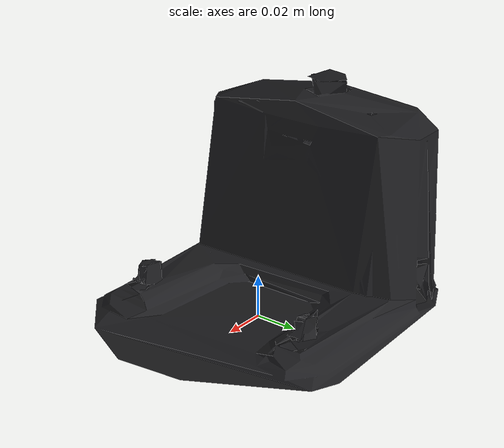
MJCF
<mujoco model="create3_dock">
  <compiler meshdir="meshes"/>

  <asset>
    <material name="dock_dark" rgba="0.12 0.12 0.13 1"/>
    <mesh name="dock_visual" file="dock_visual.obj"/>
  </asset>

  <worldbody>
    <body name="std_dock_link">
      <geom name="dock_visual" type="mesh" mesh="dock_visual" material="dock_dark" pos="0 0 0.0046"
            contype="0" conaffinity="0" group="2"/>
      <geom name="dock_collision" type="box" size="0.02 0.065 0.05" pos="-0.045 0 0.05" group="3"
            rgba="0.3 0.3 0.3 0.3"/>
      <!-- IR emitters: the halo (360 deg, 0.6096 m) and the three buoys (30 deg apertures at
           +/-10 deg for green/red, 10 deg straight out for yellow), facing +x. -->
      <site name="halo_link"        pos="-0.06 0 0.0904" size="0.004" rgba="1 0 0 0"/>
      <site name="green_buoy_link"  pos="-0.06 0 0.0604" quat="0.996195 0 0 -0.087156" size="0.004" rgba="0 1 0 0"/>
      <site name="red_buoy_link"    pos="-0.06 0 0.0604" quat="0.996195 0 0  0.087156" size="0.004" rgba="1 0 0 0"/>
      <site name="yellow_buoy_link" pos="-0.06 0 0.0604" size="0.004" rgba="1 1 0 0"/>
    </body>
  </worldbody>
</mujoco>
